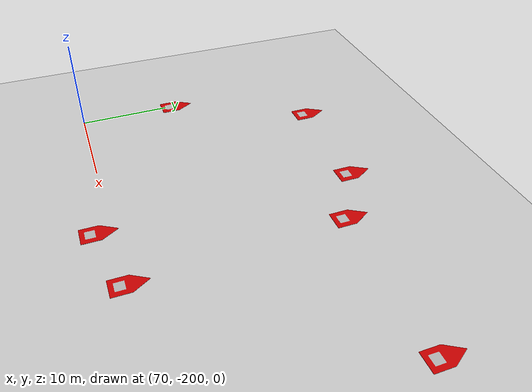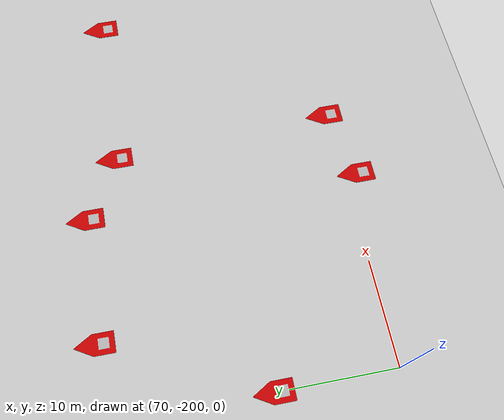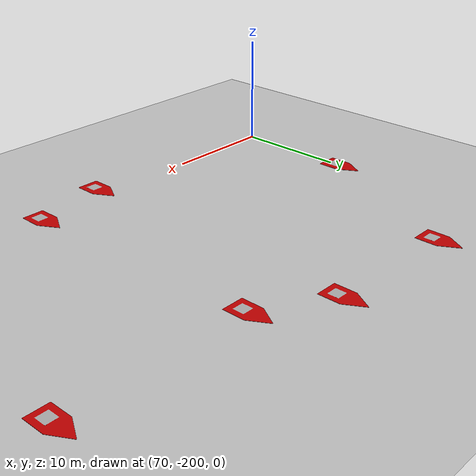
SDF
<sdf version="1.7">
 <world name="default">
  <model name="ground_plane">
   <static>1</static>
   <link name="link">
    <collision name="collision">
     <geometry><plane><normal>0 0 1</normal><size>5000 5000</size></plane></geometry>
     <surface><friction><ode><mu>1</mu><mu2>1</mu2></ode></friction></surface>
    </collision>
    <visual name="runway">
     <pose>0 0 0.005 0 0 -1.5707</pose>
     <cast_shadows>0</cast_shadows>
     <geometry><plane><normal>0 0 1</normal><size>1829 45</size></plane></geometry>
     <material>
      <script><uri>file://media/materials/scripts/gazebo.material</uri><name>Gazebo/Runway</name></script>
     </material>
    </visual>
    <visual name="grass">
     <pose>0 0 -0.1 0 -0 0</pose>
     <cast_shadows>0</cast_shadows>
     <geometry><plane><normal>0 0 1</normal><size>5000 5000</size></plane></geometry>
     <material>
      <script><uri>file://media/materials/scripts/gazebo.material</uri><name>Gazebo/Grass</name></script>
     </material>
    </visual>
   </link>
  </model>
  <model name="biao_12_0_clone_17">
   <link name="link_0">
    <inertial>
     <mass>1</mass>
     <inertia>
      <ixx>0.166667</ixx>
      <ixy>0</ixy>
      <ixz>0</ixz>
      <iyy>0.166667</iyy>
      <iyz>0</iyz>
      <izz>0.166667</izz>
     </inertia>
    </inertial>
    <visual name="visual">
     <geometry>
      <mesh><uri>/home/lzc/lzc-code/src/simulation/models/biao/12/12.dae</uri><scale>1 1 1</scale></mesh>
     </geometry>
    </visual>
    <collision name="collision">
     <geometry>
      <mesh><uri>/home/lzc/lzc-code/src/simulation/models/biao/12/12.dae</uri><scale>1 1 1</scale></mesh>
     </geometry>
     <surface>
      <friction>
       <ode><mu>1</mu><mu2>1</mu2><fdir1>0 0 0</fdir1><slip1>0</slip1><slip2>0</slip2></ode>
       <torsional>
        <coefficient>1</coefficient>
        <patch_radius>0</patch_radius>
        <surface_radius>0</surface_radius>
        <use_patch_radius>1</use_patch_radius>
        <ode><slip>0</slip></ode>
       </torsional>
      </friction>
      <bounce><restitution_coefficient>0</restitution_coefficient><threshold>1e+06</threshold></bounce>
      <contact>
       <collide_without_contact>0</collide_without_contact>
       <collide_without_contact_bitmask>1</collide_without_contact_bitmask>
       <collide_bitmask>1</collide_bitmask>
       <ode>
        <soft_cfm>0</soft_cfm>
        <soft_erp>0.2</soft_erp>
        <kp>1e+13</kp>
        <kd>1</kd>
        <max_vel>0.01</max_vel>
        <min_depth>0</min_depth>
       </ode>
       <bullet>
        <split_impulse>1</split_impulse>
        <split_impulse_penetration_threshold>-0.01</split_impulse_penetration_threshold>
        <soft_cfm>0</soft_cfm>
        <soft_erp>0.2</soft_erp>
        <kp>1e+13</kp>
        <kd>1</kd>
       </bullet>
      </contact>
     </surface>
    </collision>
   </link>
   <static>0</static>
   <pose>95 -178.542 0.010973 -2.7e-05 -2.7e-05 -1e-06</pose>
  </model>
  <model name="biao_12_0_clone_18">
   <link name="link_0">
    <inertial>
     <mass>1</mass>
     <inertia>
      <ixx>0.166667</ixx>
      <ixy>0</ixy>
      <ixz>0</ixz>
      <iyy>0.166667</iyy>
      <iyz>0</iyz>
      <izz>0.166667</izz>
     </inertia>
    </inertial>
    <visual name="visual">
     <geometry>
      <mesh><uri>/home/lzc/lzc-code/src/simulation/models/biao/12/12.dae</uri><scale>1 1 1</scale></mesh>
     </geometry>
    </visual>
    <collision name="collision">
     <geometry>
      <mesh><uri>/home/lzc/lzc-code/src/simulation/models/biao/12/12.dae</uri><scale>1 1 1</scale></mesh>
     </geometry>
     <surface>
      <friction>
       <ode><mu>1</mu><mu2>1</mu2><fdir1>0 0 0</fdir1><slip1>0</slip1><slip2>0</slip2></ode>
       <torsional>
        <coefficient>1</coefficient>
        <patch_radius>0</patch_radius>
        <surface_radius>0</surface_radius>
        <use_patch_radius>1</use_patch_radius>
        <ode><slip>0</slip></ode>
       </torsional>
      </friction>
      <bounce><restitution_coefficient>0</restitution_coefficient><threshold>1e+06</threshold></bounce>
      <contact>
       <collide_without_contact>0</collide_without_contact>
       <collide_without_contact_bitmask>1</collide_without_contact_bitmask>
       <collide_bitmask>1</collide_bitmask>
       <ode>
        <soft_cfm>0</soft_cfm>
        <soft_erp>0.2</soft_erp>
        <kp>1e+13</kp>
        <kd>1</kd>
        <max_vel>0.01</max_vel>
        <min_depth>0</min_depth>
       </ode>
       <bullet>
        <split_impulse>1</split_impulse>
        <split_impulse_penetration_threshold>-0.01</split_impulse_penetration_threshold>
        <soft_cfm>0</soft_cfm>
        <soft_erp>0.2</soft_erp>
        <kp>1e+13</kp>
        <kd>1</kd>
       </bullet>
      </contact>
     </surface>
    </collision>
   </link>
   <static>0</static>
   <pose>89 -175 0.010964 0 0 -1e-06</pose>
  </model>
  <model name="biao_12_0_clone_19">
   <link name="link_0">
    <inertial>
     <mass>1</mass>
     <inertia>
      <ixx>0.166667</ixx>
      <ixy>0</ixy>
      <ixz>0</ixz>
      <iyy>0.166667</iyy>
      <iyz>0</iyz>
      <izz>0.166667</izz>
     </inertia>
    </inertial>
    <visual name="visual">
     <geometry>
      <mesh><uri>/home/lzc/lzc-code/src/simulation/models/biao/12/12.dae</uri><scale>1 1 1</scale></mesh>
     </geometry>
    </visual>
    <collision name="collision">
     <geometry>
      <mesh><uri>/home/lzc/lzc-code/src/simulation/models/biao/12/12.dae</uri><scale>1 1 1</scale></mesh>
     </geometry>
     <surface>
      <friction>
       <ode><mu>1</mu><mu2>1</mu2><fdir1>0 0 0</fdir1><slip1>0</slip1><slip2>0</slip2></ode>
       <torsional>
        <coefficient>1</coefficient>
        <patch_radius>0</patch_radius>
        <surface_radius>0</surface_radius>
        <use_patch_radius>1</use_patch_radius>
        <ode><slip>0</slip></ode>
       </torsional>
      </friction>
      <bounce><restitution_coefficient>0</restitution_coefficient><threshold>1e+06</threshold></bounce>
      <contact>
       <collide_without_contact>0</collide_without_contact>
       <collide_without_contact_bitmask>1</collide_without_contact_bitmask>
       <collide_bitmask>1</collide_bitmask>
       <ode>
        <soft_cfm>0</soft_cfm>
        <soft_erp>0.2</soft_erp>
        <kp>1e+13</kp>
        <kd>1</kd>
        <max_vel>0.01</max_vel>
        <min_depth>0</min_depth>
       </ode>
       <bullet>
        <split_impulse>1</split_impulse>
        <split_impulse_penetration_threshold>-0.01</split_impulse_penetration_threshold>
        <soft_cfm>0</soft_cfm>
        <soft_erp>0.2</soft_erp>
        <kp>1e+13</kp>
        <kd>1</kd>
       </bullet>
      </contact>
     </surface>
    </collision>
   </link>
   <static>0</static>
   <pose>77 -174.57 0.010964 0 0 -1e-06</pose>
  </model>
  <model name="biao_12_0_clone_21">
   <link name="link_0">
    <inertial>
     <mass>1</mass>
     <inertia>
      <ixx>0.166667</ixx>
      <ixy>0</ixy>
      <ixz>0</ixz>
      <iyy>0.166667</iyy>
      <iyz>0</iyz>
      <izz>0.166667</izz>
     </inertia>
    </inertial>
    <visual name="visual">
     <geometry>
      <mesh><uri>/home/lzc/lzc-code/src/simulation/models/biao/12/12.dae</uri><scale>1 1 1</scale></mesh>
     </geometry>
    </visual>
    <collision name="collision">
     <geometry>
      <mesh><uri>/home/lzc/lzc-code/src/simulation/models/biao/12/12.dae</uri><scale>1 1 1</scale></mesh>
     </geometry>
     <surface>
      <friction>
       <ode><mu>1</mu><mu2>1</mu2><fdir1>0 0 0</fdir1><slip1>0</slip1><slip2>0</slip2></ode>
       <torsional>
        <coefficient>1</coefficient>
        <patch_radius>0</patch_radius>
        <surface_radius>0</surface_radius>
        <use_patch_radius>1</use_patch_radius>
        <ode><slip>0</slip></ode>
       </torsional>
      </friction>
      <bounce><restitution_coefficient>0</restitution_coefficient><threshold>1e+06</threshold></bounce>
      <contact>
       <collide_without_contact>0</collide_without_contact>
       <collide_without_contact_bitmask>1</collide_without_contact_bitmask>
       <collide_bitmask>1</collide_bitmask>
       <ode>
        <soft_cfm>0</soft_cfm>
        <soft_erp>0.2</soft_erp>
        <kp>1e+13</kp>
        <kd>1</kd>
        <max_vel>0.01</max_vel>
        <min_depth>0</min_depth>
       </ode>
       <bullet>
        <split_impulse>1</split_impulse>
        <split_impulse_penetration_threshold>-0.01</split_impulse_penetration_threshold>
        <soft_cfm>0</soft_cfm>
        <soft_erp>0.2</soft_erp>
        <kp>1e+13</kp>
        <kd>1</kd>
       </bullet>
      </contact>
     </surface>
    </collision>
   </link>
   <static>0</static>
   <pose>89 -202 0.010973 -2.7e-05 -2.7e-05 -1e-06</pose>
  </model>
  <model name="biao_12_0_clone_22">
   <link name="link_0">
    <inertial>
     <mass>1</mass>
     <inertia>
      <ixx>0.166667</ixx>
      <ixy>0</ixy>
      <ixz>0</ixz>
      <iyy>0.166667</iyy>
      <iyz>0</iyz>
      <izz>0.166667</izz>
     </inertia>
    </inertial>
    <visual name="visual">
     <geometry>
      <mesh><uri>/home/lzc/lzc-code/src/simulation/models/biao/12/12.dae</uri><scale>1 1 1</scale></mesh>
     </geometry>
    </visual>
    <collision name="collision">
     <geometry>
      <mesh><uri>/home/lzc/lzc-code/src/simulation/models/biao/12/12.dae</uri><scale>1 1 1</scale></mesh>
     </geometry>
     <surface>
      <friction>
       <ode><mu>1</mu><mu2>1</mu2><fdir1>0 0 0</fdir1><slip1>0</slip1><slip2>0</slip2></ode>
       <torsional>
        <coefficient>1</coefficient>
        <patch_radius>0</patch_radius>
        <surface_radius>0</surface_radius>
        <use_patch_radius>1</use_patch_radius>
        <ode><slip>0</slip></ode>
       </torsional>
      </friction>
      <bounce><restitution_coefficient>0</restitution_coefficient><threshold>1e+06</threshold></bounce>
      <contact>
       <collide_without_contact>0</collide_without_contact>
       <collide_without_contact_bitmask>1</collide_without_contact_bitmask>
       <collide_bitmask>1</collide_bitmask>
       <ode>
        <soft_cfm>0</soft_cfm>
        <soft_erp>0.2</soft_erp>
        <kp>1e+13</kp>
        <kd>1</kd>
        <max_vel>0.01</max_vel>
        <min_depth>0</min_depth>
       </ode>
       <bullet>
        <split_impulse>1</split_impulse>
        <split_impulse_penetration_threshold>-0.01</split_impulse_penetration_threshold>
        <soft_cfm>0</soft_cfm>
        <soft_erp>0.2</soft_erp>
        <kp>1e+13</kp>
        <kd>1</kd>
       </bullet>
      </contact>
     </surface>
    </collision>
   </link>
   <static>0</static>
   <pose>96 -200.486 0.010973 -2.7e-05 -2.7e-05 -1e-06</pose>
  </model>
  <model name="biao_12_0_clone_23">
   <link name="link_0">
    <inertial>
     <mass>1</mass>
     <inertia>
      <ixx>0.166667</ixx>
      <ixy>0</ixy>
      <ixz>0</ixz>
      <iyy>0.166667</iyy>
      <iyz>0</iyz>
      <izz>0.166667</izz>
     </inertia>
    </inertial>
    <visual name="visual">
     <geometry>
      <mesh><uri>/home/lzc/lzc-code/src/simulation/models/biao/12/12.dae</uri><scale>1 1 1</scale></mesh>
     </geometry>
    </visual>
    <collision name="collision">
     <geometry>
      <mesh><uri>/home/lzc/lzc-code/src/simulation/models/biao/12/12.dae</uri><scale>1 1 1</scale></mesh>
     </geometry>
     <surface>
      <friction>
       <ode><mu>1</mu><mu2>1</mu2><fdir1>0 0 0</fdir1><slip1>0</slip1><slip2>0</slip2></ode>
       <torsional>
        <coefficient>1</coefficient>
        <patch_radius>0</patch_radius>
        <surface_radius>0</surface_radius>
        <use_patch_radius>1</use_patch_radius>
        <ode><slip>0</slip></ode>
       </torsional>
      </friction>
      <bounce><restitution_coefficient>0</restitution_coefficient><threshold>1e+06</threshold></bounce>
      <contact>
       <collide_without_contact>0</collide_without_contact>
       <collide_without_contact_bitmask>1</collide_without_contact_bitmask>
       <collide_bitmask>1</collide_bitmask>
       <ode>
        <soft_cfm>0</soft_cfm>
        <soft_erp>0.2</soft_erp>
        <kp>1e+13</kp>
        <kd>1</kd>
        <max_vel>0.01</max_vel>
        <min_depth>0</min_depth>
       </ode>
       <bullet>
        <split_impulse>1</split_impulse>
        <split_impulse_penetration_threshold>-0.01</split_impulse_penetration_threshold>
        <soft_cfm>0</soft_cfm>
        <soft_erp>0.2</soft_erp>
        <kp>1e+13</kp>
        <kd>1</kd>
       </bullet>
      </contact>
     </surface>
    </collision>
   </link>
   <static>0</static>
   <pose>70 -189.472 0.010973 -2.7e-05 -2.7e-05 -1e-06</pose>
  </model>
  <model name="biao_12_0_clone_16_clone_0_clone_63">
   <link name="link_0">
    <inertial>
     <mass>1</mass>
     <inertia>
      <ixx>0.166667</ixx>
      <ixy>0</ixy>
      <ixz>0</ixz>
      <iyy>0.166667</iyy>
      <iyz>0</iyz>
      <izz>0.166667</izz>
     </inertia>
    </inertial>
    <visual name="visual">
     <geometry>
      <mesh><uri>/home/lzc/lzc-code/src/simulation/models/biao/12/12.dae</uri><scale>1 1 1</scale></mesh>
     </geometry>
    </visual>
    <collision name="collision">
     <geometry>
      <mesh><uri>/home/lzc/lzc-code/src/simulation/models/biao/12/12.dae</uri><scale>1 1 1</scale></mesh>
     </geometry>
     <surface>
      <friction>
       <ode><mu>1</mu><mu2>1</mu2><fdir1>0 0 0</fdir1><slip1>0</slip1><slip2>0</slip2></ode>
       <torsional>
        <coefficient>1</coefficient>
        <patch_radius>0</patch_radius>
        <surface_radius>0</surface_radius>
        <use_patch_radius>1</use_patch_radius>
        <ode><slip>0</slip></ode>
       </torsional>
      </friction>
      <bounce><restitution_coefficient>0</restitution_coefficient><threshold>1e+06</threshold></bounce>
      <contact>
       <collide_without_contact>0</collide_without_contact>
       <collide_without_contact_bitmask>1</collide_without_contact_bitmask>
       <collide_bitmask>1</collide_bitmask>
       <ode>
        <soft_cfm>0</soft_cfm>
        <soft_erp>0.2</soft_erp>
        <kp>1e+13</kp>
        <kd>1</kd>
        <max_vel>0.01</max_vel>
        <min_depth>0</min_depth>
       </ode>
       <bullet>
        <split_impulse>1</split_impulse>
        <split_impulse_penetration_threshold>-0.01</split_impulse_penetration_threshold>
        <soft_cfm>0</soft_cfm>
        <soft_erp>0.2</soft_erp>
        <kp>1e+13</kp>
        <kd>1</kd>
       </bullet>
      </contact>
     </surface>
    </collision>
   </link>
   <static>0</static>
   <pose>111 -179 0.010964 0 -0 0</pose>
  </model>
 </world>
</sdf>
